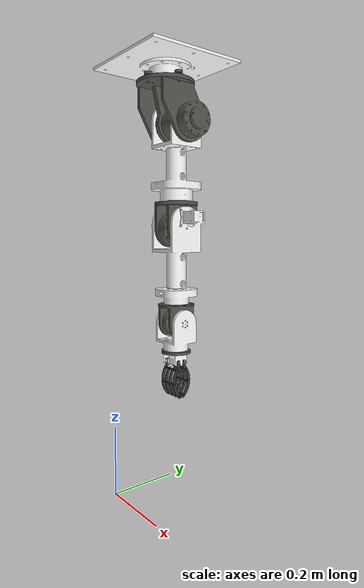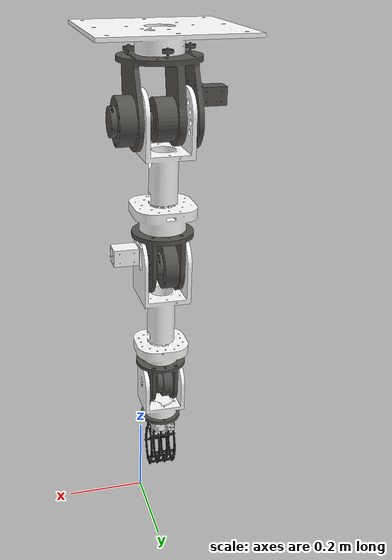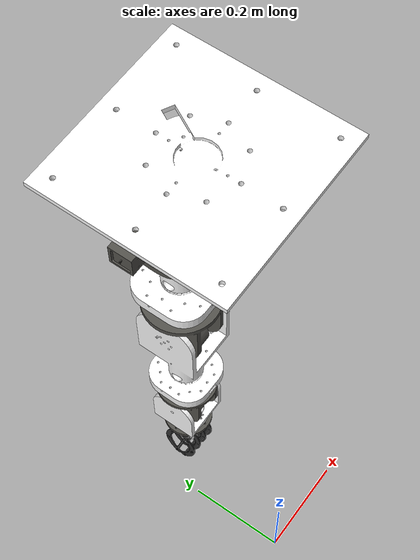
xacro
<?xml version="1.0" encoding="utf-8"?>

<robot xmlns:xacro="http://www.ros.org/wiki/xacro" name="daadbot">

  <xacro:arg name="is_sim" default="true"/>

  <xacro:arg name = "is_ignition" default="true"/>

  <xacro:include filename = "$(find daadbot_desc)/urdf/urdf_inverted_pos_forw_bottle/daadbot_gazebo.xacro"/>
  <xacro:include filename = "$(find daadbot_desc)/urdf/urdf_inverted_pos_forw_bottle/daadbot_ros2_control.xacro"/>

  <xacro:property name='PI' value='3.141592653589793'/>
  <xacro:property name='velocity' value='1.0'/>
  <xacro:property name='effort' value='200.0'/>

  <link name="world"/>

  <!-- Attach Daadbot to the Table -->
  <joint name="base_joint" type="fixed">
    <parent link="world"/>
    <child link="base_link"/>
    <origin xyz="0.005 0.1725 1.24" rpy="0 3.14 1.57"/> <!-- Adjust position of the robot on the table -->
    <!-- For inverted - I have changed rpy to 0 3.14 0 from rpy = 0 0 0 -->
  </joint>

  <link
    name="base_link">
    <inertial>
      <origin
        xyz="-0.00246645540256236 -0.00131466478904116 0.00320374562257973"
        rpy="0 0 0" />
      <mass
        value="6.91122989464636" />
      <inertia
        ixx="0.0466171750852481"
        ixy="0.00010076855342015"
        ixz="5.14819747192778E-08"
        iyy="0.0464821203083076"
        iyz="-1.44621889265211E-07"
        izz="0.0929840869855057" />
    </inertial>
    <visual>
      <origin
        xyz="0 0 0"
        rpy="0 0 0" />
      <geometry>
        <mesh
          filename="package://daadbot_desc/meshes/base_link.STL" />
      </geometry>
      <material
        name="">
        <color
          rgba= "1 1 1 1" />
      </material>
    </visual>
    <collision>
      <origin
        xyz="0 0 0"
        rpy="0 0 0" />
      <geometry>
        <mesh
          filename="package://daadbot_desc/meshes/base_link.STL" />
      </geometry>
    </collision>
  </link>
  <link
    name="Link_1">
    <inertial>
      <origin
        xyz="0.0222146013900772 2.73568109690481E-06 0.0747841784291177"
        rpy="0 0 -3.14" />
      <mass
        value="2.34948803406793" />
      <inertia
        ixx="0.00332922517000865"
        ixy="1.64875308454708E-07"
        ixz="-0.000433929392474112"
        iyy="0.00524724735039028"
        iyz="2.38505609352415E-07"
        izz="0.00419520671173006" />
    </inertial>
    <visual>
      <origin
        xyz="0 0 0"
        rpy="0 0 0" />
      <geometry>
        <mesh
          filename="package://daadbot_desc/meshes/Link_1.STL" />
      </geometry>
      <material
        name="">
        <color
          rgba= "0.329 0.322 0.302 1" />
      </material>
    </visual>
    <collision>
      <origin
        xyz="0 0 0"
        rpy="0 0 0" />
      <geometry>
        <mesh
          filename="package://daadbot_desc/meshes/Link_1.STL" />
      </geometry>
    </collision>
  </link>
  <joint
    name="joint_1"
    type="revolute">
    <origin
      xyz="-0.0029638 -0.0015759 0.04796"
      rpy="0 0 3.14159" />
    <parent
      link="base_link" />
    <child
      link="Link_1" />
    <axis
      xyz="0 0 -1" />
    <limit
      lower="-0.1"
      upper="3.2"
      effort="${effort}"
      velocity="${velocity}" />
  </joint>
  <gazebo reference="joint_1">
  <sensor name="ft_sensor_joint_1" type="force_torque">
    <always_on>true</always_on>
    <update_rate>1000</update_rate>
    <force_torque>
      <frame>child</frame>
      <measure_direction>child_to_parent</measure_direction>
    </force_torque>
    <pose>0 0 0 0 0 0</pose>
  </sensor>
</gazebo>
  <link
    name="Link_2">
    <inertial>
      <origin
        xyz="0.121210588587965 0.000230649813345946 -0.049540637756618"
        rpy="0 0 0" />
      <mass
        value="2.24401700155026" />
      <inertia
        ixx="0.00389001580470153"
        ixy="1.8291659115195E-06"
        ixz="2.04233321611583E-07"
        iyy="0.00259728697678572"
        iyz="3.29392581309982E-08"
        izz="0.00312685277067708" />
    </inertial>
    <visual>
      <origin
        xyz="0 0 0"
        rpy="0 0 0" />
      <geometry>
        <mesh
          filename="package://daadbot_desc/meshes/Link_2.STL" />
      </geometry>
      <material
        name="">
        <color
          rgba= "1 1 1 1" />
      </material>
    </visual>
    <collision>
      <origin
        xyz="0 0 0"
        rpy="0 0 0" />
      <geometry>
        <mesh
          filename="package://daadbot_desc/meshes/Link_2.STL" />
      </geometry>
    </collision>
  </link>
  <joint
    name="joint_2"
    type="revolute">
    <origin
      xyz="0.0400000000000002 -0.050000000000002 0.114463048454132"
      rpy="1.57 -1.57 0" />
    <parent
      link="Link_1" />
    <child
      link="Link_2" />
    <axis
      xyz="0 0 -1" />
    <limit
      lower="-3.4907"
      upper="3.5236"
      effort="${effort}"
      velocity="${velocity}" />
    <sensor name="force_torque" type="force_torque">
          <update_rate>30</update_rate>
    </sensor>
  </joint>

  <link
    name="Link_3">
    <inertial>
      <origin
        xyz="-0.00448997206818821 -2.34751712904213E-05 0.0488571768392556"
        rpy="0 0 0" />
      <mass
        value="1.2718719681393" />
      <inertia
        ixx="0.00206983011422612"
        ixy="9.27500479472452E-08"
        ixz="3.38378548754623E-06"
        iyy="0.00129565231901482"
        iyz="2.88989653562542E-07"
        izz="0.00156994991003151" />
    </inertial>
    <visual>
      <origin
        xyz="0 0 0"
        rpy="0 0 0" />
      <geometry>
        <mesh
          filename="package://daadbot_desc/meshes/Link_3.STL" />
      </geometry>
      <material
        name="">
        <color
          rgba= "0.329 0.322 0.302 1" />
      </material>
    </visual>
    <collision>
      <origin
        xyz="0 0 0"
        rpy="0 0 0" />
      <geometry>
        <mesh
          filename="package://daadbot_desc/meshes/Link_3.STL" />
      </geometry>
    </collision>
  </link>
  <joint
    name="joint_3"
    type="revolute">
    <origin
      xyz="0.234499999999998 0 -0.0495000000000002"
      rpy="0 1.5707963267949 0" />
    <parent
      link="Link_2" />
    <child
      link="Link_3" />
    <axis
      xyz="0 0 1" />
    <limit
      lower="-3.2"
      upper="3.2"
      effort="${effort}"
      velocity="${velocity}" />
  </joint>
  <link
    name="Link_4">
    <inertial>
      <origin
        xyz="-0.119169680650385 -0.000128811902195713 0.0378163924527294"
        rpy="0 0 0" />
      <mass
        value="2.67615775175726" />
      <inertia
        ixx="0.00308017562479927"
        ixy="2.47453551729311E-06"
        ixz="-7.09348932448939E-07"
        iyy="0.00238129778603005"
        iyz="-7.47320677385655E-07"
        izz="0.00293128138362422" />
    </inertial>
    <visual>
      <origin
        xyz="0 0 0"
        rpy="0 0 0" />
      <geometry>
        <mesh
          filename="package://daadbot_desc/meshes/Link_4.STL" />
      </geometry>
      <material
        name="">
        <color
          rgba= "1 1 1 1" />
      </material>
    </visual>
    <collision>
      <origin
        xyz="0 0 0"
        rpy="0 0 0" />
      <geometry>
        <mesh
          filename="package://daadbot_desc/meshes/Link_4.STL" />
      </geometry>
    </collision>
  </link>
  <joint
    name="joint_4"
    type="revolute">
    <origin
      xyz="-0.0324999999999996 0 0.0750000000000004"
      rpy="0 1.5707963267949 0" />
    <parent
      link="Link_3" />
    <child
      link="Link_4" />
    <axis
      xyz="0 0 1" />
    <limit
      lower="-3.9199"
      upper="1.9199"
      effort="${effort}"
      velocity="${velocity}" />
  </joint>
  <link
    name="Link_5">
    <inertial>
      <origin
        xyz="0.00685541523757274 3.79292913340323E-05 0.0488580132405974"
        rpy="3.14 0 0" />
      <mass
        value="1.29018300951353" />
      <inertia
        ixx="0.00112308173661534"
        ixy="1.28316182440177E-06"
        ixz="-8.91005390036956E-07"
        iyy="0.000690097277055795"
        iyz="-3.23958303943101E-07"
        izz="0.000815216487439054" />
    </inertial>
    <visual>
      <origin
        xyz="0 0 0"
        rpy="0 0 0" />
      <geometry>
        <mesh
          filename="package://daadbot_desc/meshes/Link_5.STL" />
      </geometry>
      <material
        name="">
        <color
          rgba= "0.329 0.322 0.302 1" />
      </material>
    </visual>
    <collision>
      <origin
        xyz="0 0 0"
        rpy="0 0 0" />
      <geometry>
        <mesh
          filename="package://daadbot_desc/meshes/Link_5.STL" />
      </geometry>
    </collision>
  </link>
  <joint
    name="joint_5"
    type="revolute">
    <origin
      xyz="-0.2284999036789 0 0.0330000000000004"
      rpy="3.14159265358979 1.5707963267949 0" />
    <parent
      link="Link_4" />
    <child
      link="Link_5" />
    <axis
      xyz="0 0 1" />
    <limit
      lower="-3.4"
      upper="3.4"
      effort="15"
      velocity="${velocity}" />
  </joint>
  <link
    name="Link_6">
    <inertial>
      <origin
        xyz="-0.0534048711825299 4.35092388909042E-05 0.0268001409986631"
        rpy="0 0 0" />
      <mass
        value="1.30596061805535" />
      <inertia
        ixx="0.000961791856097317"
        ixy="1.00752377127578E-06"
        ixz="-2.55794494605017E-06"
        iyy="0.000676134530899485"
        iyz="-2.71811927605635E-06"
        izz="0.00084422746855334" />
    </inertial>
    <visual>
      <origin
        xyz="0 0 0"
        rpy="0 0 0" />
      <geometry>
        <mesh
          filename="package://daadbot_desc/meshes/link_6.STL" />
      </geometry>
      <material
        name="">
        <color
          rgba= "1 1 1 1" />
      </material>
    </visual>
    <collision>
      <origin
        xyz="0 0 0"
        rpy="0 0 0" />
      <geometry>
        <mesh
          filename="package://daadbot_desc/meshes/link_6.STL" />
      </geometry>
    </collision>
  </link>
  <joint
    name="joint_6"
    type="revolute">
    <origin
      xyz="-0.0265000104908596 0 0.0575000000000075"
      rpy="-1.57 1.57 -1.57" />
    <parent
      link="Link_5" />
    <child
      link="Link_6" />
    <axis
      xyz="0 0 1" />
    <limit
      lower="-1.5708"
      upper="1.5708"
      effort="15"
      velocity="${velocity}" />
  </joint>
  <link
    name="Link_7">
    <inertial>
      <origin
        xyz="-1.22738236721376E-06 1.16355040356286E-05 -0.00396913177271019"
        rpy="0 0 0" />
      <mass
        value="0.131686510129341" />
      <inertia
        ixx="6.91193962095496E-05"
        ixy="1.32697088081543E-10"
        ixz="8.85654326869473E-10"
        iyy="6.91388743027247E-05"
        iyz="2.09447730326603E-11"
        izz="0.000136853375303708" />
    </inertial>
    <visual>
      <origin
        xyz="0 0 0"
        rpy="0 0 0" />
      <geometry>
        <mesh
          filename="package://daadbot_desc/meshes/Link_7.STL" />
      </geometry>
      <material
        name="">
        <color
          rgba="0.329 0.322 0.302 1" />
      </material>
    </visual>
    <collision>
      <origin
        xyz="0 0 0"
        rpy="0 0 0" />
      <geometry>
        <mesh
          filename="package://daadbot_desc/meshes/Link_7.STL" />
      </geometry>
    </collision>
  </link>
  <joint
    name="joint_7"
    type="revolute">
    <origin
      xyz="-0.0864999036793499 0 0.0280000000004628"
      rpy="0 1.5707963267949 0" />
    <parent
      link="Link_6" />
    <child
      link="Link_7" />
    <axis
      xyz="0 0 -1" />
    <limit
      lower="-3.2"
      upper="3.14"
      effort="15"
      velocity="${velocity}" />
  </joint>
  <link
    name="endeffector">
    <inertial>
      <origin
        xyz="0.0115230217195728 -0.0136127070797983 0.0256571894660979"
        rpy="0 0 0" />
      <mass
        value="0.154057788286255" />
      <inertia
        ixx="3.1964247663854E-05"
        ixy="1.07138220152465E-07"
        ixz="4.30086683390955E-12"
        iyy="2.53636526523542E-05"
        iyz="-9.8230347105402E-08"
        izz="4.73802906093003E-05" />
    </inertial>
    <visual>
      <origin
        xyz="0 0 0"
        rpy="0 0 0" />
      <geometry>
        <mesh
          filename="package://daadbot_desc/meshes/end_effector.STL" />
      </geometry>
      <material
        name="">
        <color
          rgba= "1 1 1 1" />
      </material>
    </visual>
    <collision>
      <origin
        xyz="0 0 0"
        rpy="0 0 0" />
      <geometry>
        <mesh
          filename="package://daadbot_desc/meshes/end_effector.STL" />
      </geometry>
    </collision>
  </link>
  <joint
    name="endeffector_joint"
    type="fixed">
    <origin
      xyz="0 0 -0.00799999999954315"
      rpy="3.14159265357033 0 -1.57" />
    <parent
      link="Link_7" />
    <child
      link="endeffector" />
    <axis
      xyz="0 0 0" />
  </joint>
  <link
    name="right_claw">
    <inertial>
      <origin
        xyz="-0.0081697441800309 -0.0607308656339796 -0.0228000798504983"
        rpy="0 0 0" />
      <mass
        value="0.0895360179661208" />
      <inertia
        ixx="7.2886347080343E-05"
        ixy="1.41952254435033E-06"
        ixz="-1.32187343610579E-20"
        iyy="4.80785405134686E-06"
        iyz="5.93223528463108E-20"
        izz="7.68057042776624E-05" />
    </inertial>
    <visual>
      <origin
        xyz="0 0 0"
        rpy="0 0 0" />
      <geometry>
        <mesh
          filename="package://daadbot_desc/meshes/right_claw.STL" />
      </geometry>
      <material
        name="">
        <color
          rgba="0.2 0.2 0.2 1" />
      </material>
    </visual>
    <collision>
      <origin
        xyz="0 0 0"
        rpy="0 0 0" />
      <geometry>
        <mesh
          filename="package://daadbot_desc/meshes/right_claw.STL" />
      </geometry>
    </collision>
  </link>
  <joint
    name="right_gear_joint"
    type="revolute">
    <origin
      xyz="-0.01125 0.0249842558928188 0.025"
      rpy="-1.5707963267949 0 0.0" />
    <parent
      link="endeffector" />
    <child
      link="right_claw" />
    <axis
      xyz="0 0 -1" />
    <limit
      lower="0"
      upper="1.57"
      effort="${effort}"
      velocity="${velocity}" />
  </joint>
  <link
    name="left_claw">
    <inertial>
      <origin
        xyz="0.00821104998160883 -0.0610215268643555 -0.0229106636819238"
        rpy="0 0 0" />
      <mass
        value="0.089101484866654" />
      <inertia
        ixx="7.33450235726248E-05"
        ixy="-1.36237455721774E-06"
        ixz="-2.13058446114809E-20"
        iyy="4.81174919329427E-06"
        iyz="1.39075390131746E-19"
        izz="7.72705445867122E-05" />
    </inertial>
    <visual>
      <origin
        xyz="0 0 0"
        rpy="0 0 0" />
      <geometry>
        <mesh
          filename="package://daadbot_desc/meshes/left_claw.STL" />
      </geometry>
      <material
        name="">
        <color
          rgba="0.2 0.2 0.2 1" />
      </material>
    </visual>
    <collision>
      <origin
        xyz="0 0 0"
        rpy="0 0 0" />
      <geometry>
        <mesh
          filename="package://daadbot_desc/meshes/left_claw.STL" />
      </geometry>
    </collision>
  </link>
  <joint
    name="left_gear_joint"
    type="revolute">
    <origin
      xyz="0.01125 0.0249842558928188 0.025"
      rpy="-1.5707963267949 0 0" />
    <parent
      link="endeffector" />
    <child
      link="left_claw" />
    <axis
      xyz="0 0 -1" />
    <limit
      lower="-1.57"
      upper="0"
      effort="${effort}"
      velocity="${velocity}" />
    <mimic
      joint="right_gear_joint"
      multiplier="-1"
      offset="0" />
  </joint>
</robot>
